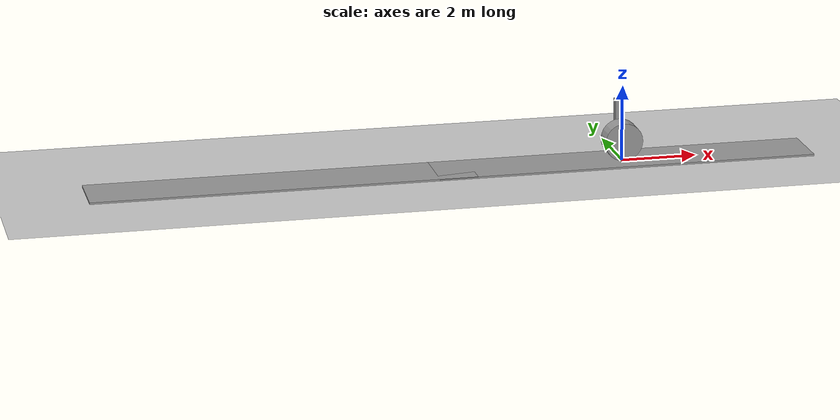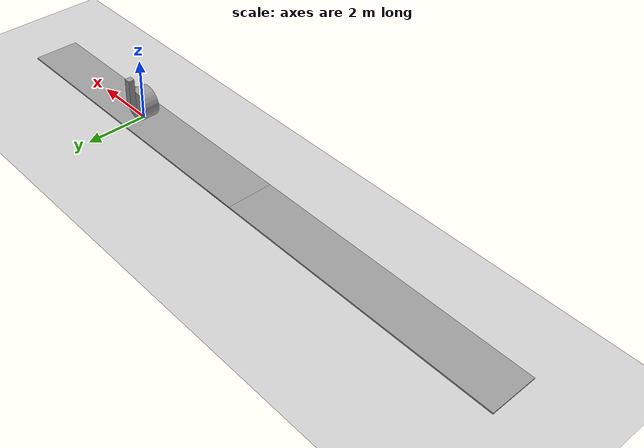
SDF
<?xml version="1.0" ?>
<sdf version="1.5">
  <world name="default">
    <include>
      <uri>model://ground_plane</uri>
    </include>
    <include>
      <uri>model://sun</uri>
    </include>

    <model name="tire_rig">
      <pose>0 0 0.55 0 0 0</pose>
      <link name="cylinder_link">
        <pose>0 0 0.0 1.57 0 0</pose>
        <collision name="collision">
          <geometry>
            <cylinder>
              <radius>0.5</radius>
              <length>0.5</length>
            </cylinder>
          </geometry>

          <surface>
            <soft_contact>
              <dart>
                <bone_attachment>100.0</bone_attachment>
                <stiffness>100.0</stiffness>
                <damping>0.0</damping>
                <flesh_mass_fraction>0.1</flesh_mass_fraction>
              </dart>
            </soft_contact>
          </surface>

        </collision>
        <visual name="visual">
          <geometry>
            <cylinder>
              <radius>0.5</radius>
              <length>0.5</length>
            </cylinder>
          </geometry>
          <material>
            <script>
              <uri>file://media/materials/scripts/gazebo.material</uri>
              <name>Gazebo/Grey</name>
            </script>
          </material>
        </visual>
      </link>

      <link name="box_link">
        <pose>0 0.4 0.5 0 0 0</pose>
        <collision name="collision">
          <geometry>
            <box>
              <size>0.2 0.2 1</size>
            </box>
          </geometry>
        </collision>
        <visual name="visual">
          <geometry>
            <box>
              <size>0.2 0.2 1</size>
            </box>
          </geometry>
          <material>
            <script>
              <uri>file://media/materials/scripts/gazebo.material</uri>
              <name>Gazebo/Grey</name>
            </script>
          </material>
        </visual>
      </link>
      <joint type="revolute" name="cylinder_world_joint">
        <pose>0 0 0 0 0 0</pose>
        <parent>world</parent>
        <child>cylinder_link</child>
        <axis>
          <xyz>0 0 1</xyz>
          <use_parent_model_frame>false</use_parent_model_frame>
        </axis>
      </joint>

      <joint type="prismatic" name="box_world_joint">
        <pose>0 0 0 0 0 0</pose>
        <parent>world</parent>
        <child>box_link</child>
        <axis>
          <xyz>0 0 1</xyz>
          <use_parent_model_frame>false</use_parent_model_frame>
        </axis>
      </joint>

      <joint type="revolute" name="cylinder_box_joint">
        <pose>0 0 0 0 0 0</pose>
        <parent>box_link</parent>
        <child>cylinder_link</child>
        <axis>
          <xyz>0 0 1</xyz>
          <use_parent_model_frame>false</use_parent_model_frame>
        </axis>
      </joint>
    </model>

    <model name="box_plane_01">
      <pose>0 0 0.025 0 0 0</pose>
      <link name="link">
        <pose>0 0 0.0 0 0 0</pose>
        <collision name="collision">
          <geometry>
            <box>
              <size>0.01 0.01 0.01</size>
            </box>
          </geometry>
        </collision>
        <visual name="visual">
          <geometry>
            <box>
              <size>0.01 0.01 0.01</size>
            </box>
          </geometry>
          <material>
            <script>
              <uri>file://media/materials/scripts/gazebo.material</uri>
              <name>Gazebo/Grey</name>
            </script>
          </material>
        </visual>
      </link>

      <link name="link_01">
        <pose>0 0 0.0 0 0 0</pose>
        <collision name="collision">
          <geometry>
            <box>
              <size>10 1.5 0.05</size>
            </box>
          </geometry>
        </collision>
        <visual name="visual">
          <geometry>
            <box>
              <size>10 1.5 0.05</size>
            </box>
          </geometry>
          <material>
            <script>
              <uri>file://media/materials/scripts/gazebo.material</uri>
              <name>Gazebo/Grey</name>
            </script>
          </material>
        </visual>
      </link>

      <link name="link_02">
        <pose>-9 0 0.0 0 0 0</pose>
        <collision name="collision">
          <geometry>
            <box>
              <size>10 1.5 0.05</size>
            </box>
          </geometry>
        </collision>
        <visual name="visual">
          <geometry>
            <box>
              <size>10 1.5 0.05</size>
            </box>
          </geometry>
          <material>
            <script>
              <uri>file://media/materials/scripts/gazebo.material</uri>
              <name>Gazebo/Grey</name>
            </script>
          </material>
        </visual>
      </link>

      <plugin name="moving_plane" filename="libMovingPlanePlugin.so">
        <link>link_01</link>
        <link>link_02</link>
        <direction>1 0 0</direction>
        <distance>9</distance>
      </plugin>
    </model>

  </world>
</sdf>
